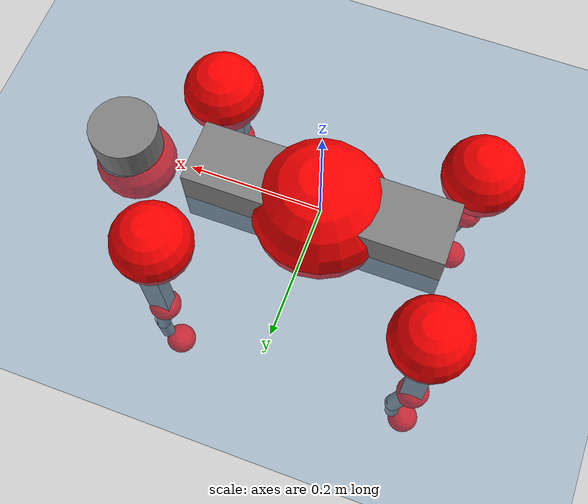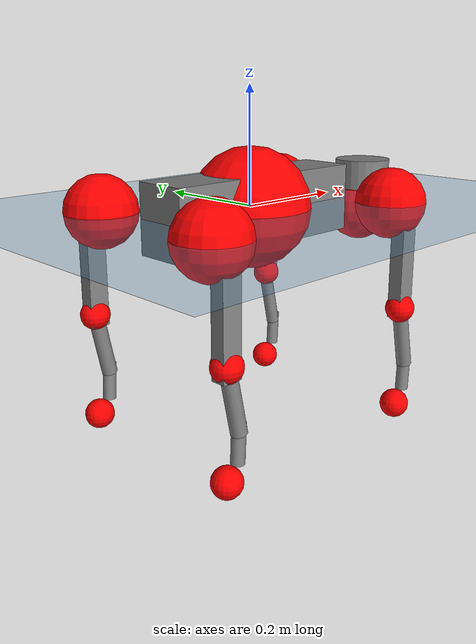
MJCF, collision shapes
<mujoco model="go2">
  <compiler angle="radian" assetdir="assets" balanceinertia="true" inertiafromgeom="false"/>

  <option timestep="0.005" density="1.2" viscosity="2e-05"/>

  <size nkey="1"/>

  <visual>
    <quality shadowsize="8192"/>
    <map shadowclip="0.5"/>
  </visual>

  <default>
    <default class="/">
      <geom contype="0" conaffinity="0" group="1" solref="-1000 -80"/>
      <site size="0.01 0.005 0.005" group="5"/>
      <general forcelimited="true" biastype="affine" gainprm="20" biasprm="0 -20 -0.5"/>
      <default class="go2">
        <joint armature="0.01" damping="0.01" frictionloss="0.2"/>
        <geom condim="1" margin="0.001"/>
        <default class="visual">
          <geom type="mesh" group="2"/>
        </default>
        <default class="collision">
          <geom group="3"/>
          <default class="foot">
            <geom size="0.022 0 0" condim="6" priority="1" friction="0.8 0.02 0.01" solimp="0.015 1 0.022"/>
          </default>
        </default>
        <default class="reward_collision_sphere">
          <geom group="5" rgba="1 0 0 1"/>
        </default>
      </default>
    </default>
  </default>

  <asset>
    <texture type="skybox" colorspace="auto" name="//unnamed_texture_0" builtin="gradient" rgb1="0.95 0.95 0.95" rgb2="0.95 0.95 0.95" width="100" height="600"/>
    <texture type="2d" colorspace="auto" name="texplane" builtin="checker" rgb1="0.345 0.575 0.748" rgb2="0.345 0.575 0.748" markrgb="1 1 1" width="512" height="512"/>
    <material name="MatPlane" class="/" texture="texplane" texuniform="true" texrepeat="2 2" specular="0.9"/>
    <material name="metal" class="/" rgba="0.9 0.95 0.95 1"/>
    <material name="black" class="/" rgba="0 0 0 1"/>
    <material name="white" class="/"/>
    <material name="gray" class="/" rgba="0.671705 0.692426 0.77427 1"/>
    <mesh name="base_0" class="/" file="base_0.obj"/>
    <mesh name="base_1" class="/" file="base_1.obj"/>
    <mesh name="base_2" class="/" file="base_2.obj"/>
    <mesh name="base_3" class="/" file="base_3.obj"/>
    <mesh name="base_4" class="/" file="base_4.obj"/>
    <mesh name="hip_0" class="/" file="hip_0.obj"/>
    <mesh name="hip_1" class="/" file="hip_1.obj"/>
    <mesh name="thigh_0" class="/" file="thigh_0.obj"/>
    <mesh name="thigh_1" class="/" file="thigh_1.obj"/>
    <mesh name="thigh_mirror_0" class="/" file="thigh_mirror_0.obj"/>
    <mesh name="thigh_mirror_1" class="/" file="thigh_mirror_1.obj"/>
    <mesh name="calf_0" class="/" file="calf_0.obj"/>
    <mesh name="calf_1" class="/" file="calf_1.obj"/>
    <mesh name="calf_mirror_0" class="/" file="calf_mirror_0.obj"/>
    <mesh name="calf_mirror_1" class="/" file="calf_mirror_1.obj"/>
    <mesh name="foot" class="/" file="foot.obj"/>
  </asset>

  <worldbody>
    <geom name="floor" class="/" size="100 100 0.125" type="plane" group="0" material="MatPlane"/>
    <light name="toplight_shadow" class="/" pos="0 0 5" dir="0.0990148 0.0990148 -0.990148" type="directional" ambient="0.04 0.04 0.04" diffuse="0.55 0.55 0.55" specular="0.12 0.12 0.12"/>
    <light name="toplight_fill" class="/" pos="0 0 5" dir="0.0990148 0.0990148 -0.990148" type="directional" castshadow="false" ambient="0.04 0.04 0.04" diffuse="0.3 0.3 0.3" specular="0.08 0.08 0.08"/>
    <body name="trunk" childclass="go2" pos="-0.000477884 -0.00211387 -0.000828619" quat="1 -2.26395e-05 6.08876e-06 -1.26977e-05">
      <inertial pos="0.0243318 -0.00194592 -0.00497869" quat="2.15695e-06 0.713005 0.00175028 0.701157" mass="7.36817" diaginertia="0.141972 0.189969 0.0114421"/>
      <joint name="//unnamed_joint_0" type="free" armature="0" damping="0" frictionloss="0"/>
      <geom name="//unnamed_geom_1" class="visual" material="black" mesh="base_0"/>
      <geom name="//unnamed_geom_2" class="visual" material="black" mesh="base_1"/>
      <geom name="//unnamed_geom_3" class="visual" material="black" mesh="base_2"/>
      <geom name="//unnamed_geom_4" class="visual" material="white" mesh="base_3"/>
      <geom name="//unnamed_geom_5" class="visual" material="gray" mesh="base_4"/>
      <geom name="trunk_1" class="collision" size="0.192556 0.0478576 0.0583504" type="box"/>
      <geom name="trunk_2" class="collision" size="0.0511845 0.0460661" pos="0.303494 0 0.00859441" type="cylinder"/>
      <geom name="trunk_3" class="collision" size="0.0481135" pos="0.312013 0 -0.0515664"/>
      <geom name="//unnamed_geom_9" class="reward_collision_sphere" size="0.102369"/>
      <geom name="//unnamed_geom_10" class="reward_collision_sphere" size="0.0614215" pos="0.29817 0 -0.0386748"/>
      <site name="imu" pos="-0.015976 0.0140326 0.0257679" size="0.0102369"/>
      <camera name="track" pos="0 -2.29348 0" quat="0.707107 0.707107 0 0" mode="trackcom"/>
      <camera name="ego_camera" pos="0.332246 0 0.0386748" quat="-0.5 -0.5 0.5 0.5"/>
      <body name="FL_hip" pos="0.208198 0.0527659 0.000588554" quat="1 0.000723103 -0.000171426 0.000260236">
        <inertial pos="-0.00569738 0.00244833 0.00246031" quat="0.496195 0.498954 0.503858 0.500962" mass="0.713539" diaginertia="0.00121062 0.00115557 0.000223113"/>
        <joint name="FL_hip_joint" pos="0 0 0" axis="0.99996 0.00465368 0.00766996" stiffness="0.00343882" range="-1.06211 1.10463" armature="0.0106265" damping="0.00146687" frictionloss="0.231463"/>
        <geom name="//unnamed_geom_11" class="visual" material="metal" mesh="hip_0"/>
        <geom name="//unnamed_geom_12" class="visual" material="gray" mesh="hip_1"/>
        <geom name="//unnamed_geom_13" class="collision" size="0.0470898 0.0204738" pos="0 0.0917392 0" quat="0.707107 0.707107 0 0" type="cylinder"/>
        <geom name="//unnamed_geom_14" class="reward_collision_sphere" size="0.0614215" pos="0 0.0802718 0"/>
        <body name="FL_thigh" pos="-0.00161429 0.109056 -0.000457536" quat="0.999999 0.000170854 -0.000828269 0.00109373">
          <inertial pos="-0.0014918 -0.0227617 -0.027835" quat="0.827034 0.0902434 -0.0177694 0.554577" mass="1.23527" diaginertia="0.0079717 0.0114294 0.000397424"/>
          <joint name="FL_thigh_joint" pos="0 0 0" axis="-0.00224841 0.999919 -0.0125053" stiffness="0.00329749" range="-1.51349 3.50318" armature="0.0111712" damping="0.00751382" frictionloss="0.228874"/>
          <geom name="//unnamed_geom_15" class="visual" material="metal" mesh="thigh_0"/>
          <geom name="//unnamed_geom_16" class="visual" material="gray" mesh="thigh_1"/>
          <geom name="//unnamed_geom_17" class="collision" size="0.109023 0.0125402 0.0174027" pos="0 0 -0.0915304" quat="0.707107 0 0.707107 0" type="box"/>
          <body name="FL_calf" pos="-0.00244864 -0.000811936 -0.185431" quat="0.999999 0.000207282 0.00129773 -0.000605885">
            <inertial pos="0.00936203 -0.000417794 -0.121079" quat="0.71165 0.00334081 -0.0054499 0.702505" mass="0.261633" diaginertia="0.00199512 0.00293427 2.49799e-05"/>
            <joint name="FL_calf_joint" pos="0 0 0" axis="-0.00387016 0.999973 0.00629822" stiffness="0.00164942" range="-2.72274 -0.835021" armature="0.00885032" damping="0.00668142" frictionloss="0.204051"/>
            <geom name="//unnamed_geom_18" class="visual" material="gray" mesh="calf_0"/>
            <geom name="//unnamed_geom_19" class="visual" material="black" mesh="calf_1"/>
            <geom name="FL_calf0" class="collision" size="0.0122843 0.0614215" pos="0.00851914 0 -0.0515664" quat="0.994493 0 -0.104807 0" type="cylinder"/>
            <geom name="//unnamed_geom_21" class="collision" size="0.0112606 0.03327" pos="0.0212978 0 -0.127197" quat="0.999688 0 0.0249974 0" type="cylinder"/>
            <geom name="//unnamed_geom_22" class="visual" pos="0 0 -0.183061" quat="1 0 0 0" material="black" mesh="foot"/>
            <geom name="FL_foot" class="foot" size="0.0165009" pos="-0.00212978 0 -0.183061"/>
            <geom name="//unnamed_geom_24" class="reward_collision_sphere" size="0.0255923"/>
            <geom name="//unnamed_geom_25" class="reward_collision_sphere" size="0.0255923" pos="-0.00212978 0 -0.183061"/>
            <site name="FL_foot" class="foot" pos="-0.00212978 0 -0.183061" size="0.0102369"/>
          </body>
        </body>
      </body>
      <body name="FR_hip" pos="0.20733 -0.0562396 -0.00220076" quat="1 -2.04967e-05 -0.000641406 -0.00014722">
        <inertial pos="-0.00751322 -0.00187611 0.00131689" quat="0.494287 0.508424 0.500297 0.496879" mass="0.70724" diaginertia="0.00116877 0.00117887 0.000228026"/>
        <joint name="FR_hip_joint" pos="0 0 0" axis="0.999911 -0.00683335 -0.0114575" range="-1.04649 1.07185" armature="0.0111258" damping="0.01315" frictionloss="0.227927"/>
        <geom name="//unnamed_geom_26" class="visual" pos="0 2.50283e-09 1.07352e-07" quat="4.63268e-05 1 0 0" material="metal" mesh="hip_0"/>
        <geom name="//unnamed_geom_27" class="visual" pos="0 4.05739e-09 -2.65522e-07" quat="4.63268e-05 1 0 0" material="gray" mesh="hip_1"/>
        <geom name="//unnamed_geom_28" class="collision" size="0.0470898 0.0204738" pos="0 -0.0917392 0" quat="0.707107 0.707107 0 0" type="cylinder"/>
        <geom name="//unnamed_geom_29" class="reward_collision_sphere" size="0.0614215" pos="0 -0.0802718 0"/>
        <body name="FR_thigh" pos="0.000431558 -0.110088 -0.000120083" quat="0.999999 -0.000677752 0.000990557 0.000836845">
          <inertial pos="-0.00604964 0.0257955 -0.0271178" quat="0.562402 -0.01536 0.0825235 0.822592" mass="1.30125" diaginertia="0.00822808 0.0118054 0.000408108"/>
          <joint name="FR_thigh_joint" pos="0 0 0" axis="0.00252082 -0.999995 -0.00205034" range="-3.4989 1.57219" armature="0.00990849" damping="0.0211886" frictionloss="0.204957"/>
          <geom name="//unnamed_geom_30" class="visual" material="metal" mesh="thigh_mirror_0"/>
          <geom name="//unnamed_geom_31" class="visual" material="gray" mesh="thigh_mirror_1"/>
          <geom name="//unnamed_geom_32" class="collision" size="0.109023 0.0125402 0.0174027" pos="0 0 -0.0915304" quat="0.707107 0 0.707107 0" type="box"/>
          <body name="FR_calf" pos="-0.000975242 -0.00165356 -0.185095" quat="1 0.000189381 0.000178283 -0.000657866">
            <inertial pos="0.00932863 0.000635429 -0.119247" quat="0.700666 -0.00013055 0.0139547 0.713353" mass="0.256657" diaginertia="0.00207031 0.00292343 2.55885e-05"/>
            <joint name="FR_calf_joint" pos="0 0 0" axis="-1.58153e-05 -1 -0.000132113" range="0.83853 2.70046" armature="0.0105467" damping="0.0118936" frictionloss="0.189156"/>
            <geom name="//unnamed_geom_33" class="visual" material="gray" mesh="calf_mirror_0"/>
            <geom name="//unnamed_geom_34" class="visual" material="black" mesh="calf_mirror_1"/>
            <geom name="FR_calf0" class="collision" size="0.013308 0.0614215" pos="0.0106489 0 -0.0515664" quat="0.995004 0 -0.0998334 0" type="cylinder"/>
            <geom name="//unnamed_geom_36" class="collision" size="0.0112606 0.03327" pos="0.0212978 0 -0.127197" quat="0.999688 0 0.0249974 0" type="cylinder"/>
            <geom name="//unnamed_geom_37" class="visual" pos="0 0 -0.183061" quat="1 0 0 0" material="black" mesh="foot"/>
            <geom name="FR_foot" class="foot" size="0.0201171" pos="-0.00212978 0 -0.183061"/>
            <geom name="//unnamed_geom_39" class="reward_collision_sphere" size="0.0255923"/>
            <geom name="//unnamed_geom_40" class="reward_collision_sphere" size="0.0255923" pos="-0.00212978 0 -0.183061"/>
            <site name="FR_foot" class="foot" pos="-0.00212978 0 -0.183061" size="0.0102369"/>
          </body>
        </body>
      </body>
      <body name="RL_hip" pos="-0.206557 0.0535301 0.00192181" quat="0.999999 -0.000426274 0.000584488 0.000819923">
        <inertial pos="0.00634975 0.000555001 0.00272035" quat="0.509283 0.50138 0.497182 0.491995" mass="0.767686" diaginertia="0.00125681 0.00122258 0.000231332"/>
        <joint name="RL_hip_joint" pos="0 0 0" axis="-0.99961 0.0211442 -0.018252" range="-1.02584 0.991346" armature="0.0104855" damping="0.00586297" frictionloss="0.211299"/>
        <geom name="//unnamed_geom_41" class="visual" pos="-1.78981e-09 0 -3.50843e-07" quat="4.63268e-05 0 1 0" material="metal" mesh="hip_0"/>
        <geom name="//unnamed_geom_42" class="visual" pos="-2.90149e-09 0 -3.11148e-07" quat="4.63268e-05 0 1 0" material="gray" mesh="hip_1"/>
        <geom name="//unnamed_geom_43" class="collision" size="0.0470898 0.0204738" pos="0 0.0917392 0" quat="0.707107 0.707107 0 0" type="cylinder"/>
        <geom name="//unnamed_geom_44" class="reward_collision_sphere" size="0.0614215" pos="0 0.0802718 0"/>
        <body name="RL_thigh" pos="-0.00233418 0.109274 0.000122838" quat="1 -0.000411097 7.86017e-05 -0.000102214">
          <inertial pos="-0.00325173 -0.0244881 -0.0287533" quat="0.835081 0.0747689 -0.0238024 0.544502" mass="1.26409" diaginertia="0.00823398 0.0123133 0.00042862"/>
          <joint name="RL_thigh_joint" pos="0 0 0" axis="0.0118504 0.999921 0.004103" stiffness="0.00385941" range="-0.565785 4.59327" armature="0.00910779" damping="0" frictionloss="0.21318"/>
          <geom name="//unnamed_geom_45" class="visual" material="metal" mesh="thigh_0"/>
          <geom name="//unnamed_geom_46" class="visual" material="gray" mesh="thigh_1"/>
          <geom name="//unnamed_geom_47" class="collision" size="0.109023 0.0125402 0.0174027" pos="0 0 -0.0915304" quat="0.707107 0 0.707107 0" type="box"/>
          <body name="RL_calf" pos="-0.00160519 0.000182501 -0.181835" quat="1 0.000283976 -2.06563e-05 0.000423075">
            <inertial pos="0.00749879 -0.000197072 -0.121267" quat="0.710445 0.00181216 0.00051002 0.70375" mass="0.277078" diaginertia="0.00214745 0.00304049 2.57854e-05"/>
            <joint name="RL_calf_joint" pos="0 0 0" axis="0.000198821 0.999934 0.0114993" stiffness="0.0020987" range="-2.72405 -0.8808" armature="0.0098145" damping="0" frictionloss="0.207406"/>
            <geom name="//unnamed_geom_48" class="visual" material="gray" mesh="calf_0"/>
            <geom name="//unnamed_geom_49" class="visual" material="black" mesh="calf_1"/>
            <geom name="RL_calf0" class="collision" size="0.013308 0.0614215" pos="0.0106489 0 -0.0515664" quat="0.995004 0 -0.0998334 0" type="cylinder"/>
            <geom name="//unnamed_geom_51" class="collision" size="0.0112606 0.03327" pos="0.0212978 0 -0.127197" quat="0.999688 0 0.0249974 0" type="cylinder"/>
            <geom name="//unnamed_geom_52" class="visual" pos="0 0 -0.183061" quat="1 0 0 0" material="black" mesh="foot"/>
            <geom name="RL_foot" class="foot" size="0.0220779" pos="-0.00212978 0 -0.183061"/>
            <geom name="//unnamed_geom_54" class="reward_collision_sphere" size="0.0255923"/>
            <geom name="//unnamed_geom_55" class="reward_collision_sphere" size="0.0255923" pos="-0.00212978 0 -0.183061"/>
            <site name="RL_foot" class="foot" pos="-0.00212978 0 -0.183061" size="0.0102369"/>
          </body>
        </body>
      </body>
      <body name="RR_hip" pos="-0.205123 -0.0524834 -0.0023632" quat="1 -0.000433917 0.00046789 -0.000162881">
        <inertial pos="0.00687434 -0.000512173 -0.0029303" quat="0.496411 0.495261 0.503631 0.504626" mass="0.743692" diaginertia="0.00128796 0.00125966 0.000235204"/>
        <joint name="RR_hip_joint" pos="0 0 0" axis="-0.999995 0.00302991 -0.000587239" stiffness="0.012366" range="-1.03737 1.02951" armature="0.0103945" damping="0.00418274" frictionloss="0.197903"/>
        <geom name="//unnamed_geom_56" class="visual" pos="1.79264e-09 2.50283e-09 -4.58195e-07" quat="2.14617e-09 4.63268e-05 4.63268e-05 -1" material="metal" mesh="hip_0"/>
        <geom name="//unnamed_geom_57" class="visual" pos="2.89448e-09 4.05739e-09 -4.56259e-08" quat="2.14617e-09 4.63268e-05 4.63268e-05 -1" material="gray" mesh="hip_1"/>
        <geom name="//unnamed_geom_58" class="collision" size="0.0470898 0.0204738" pos="0 -0.0917392 0" quat="0.707107 0.707107 0 0" type="cylinder"/>
        <geom name="//unnamed_geom_59" class="reward_collision_sphere" size="0.0614215" pos="0 -0.0802718 0"/>
        <body name="RR_thigh" pos="-9.97196e-05 -0.107398 0.00147106" quat="1 -0.000136922 0.000691221 -0.000272289">
          <inertial pos="-0.00375075 0.0246318 -0.0254215" quat="0.547762 -0.0203574 0.0854747 0.832007" mass="1.17822" diaginertia="0.007779 0.0110681 0.000397069"/>
          <joint name="RR_thigh_joint" pos="0 0 0" axis="0.000266286 -0.99999 -0.00452642" range="-4.5376 0.581523" armature="0.0107687" damping="0.0058353" frictionloss="0.208813"/>
          <geom name="//unnamed_geom_60" class="visual" material="metal" mesh="thigh_mirror_0"/>
          <geom name="//unnamed_geom_61" class="visual" material="gray" mesh="thigh_mirror_1"/>
          <geom name="//unnamed_geom_62" class="collision" size="0.109023 0.0125402 0.0174027" pos="0 0 -0.0915304" quat="0.707107 0 0.707107 0" type="box"/>
          <body name="RR_calf" pos="0.0016467 0.00122854 -0.181245" quat="0.999999 -0.00107101 -0.000618997 -0.000496375">
            <inertial pos="0.00580902 0.000886729 -0.122939" quat="0.705945 0.00713347 0.00148648 0.70823" mass="0.261737" diaginertia="0.00206026 0.00283284 2.51084e-05"/>
            <joint name="RR_calf_joint" pos="0 0 0" axis="-0.00336219 -0.999994 0.000954236" range="0.798256 2.73894" armature="0.00969709" damping="0.011621" frictionloss="0.20543"/>
            <geom name="//unnamed_geom_63" class="visual" material="gray" mesh="calf_mirror_0"/>
            <geom name="//unnamed_geom_64" class="visual" material="black" mesh="calf_mirror_1"/>
            <geom name="RR_calf0" class="collision" size="0.013308 0.0614215" pos="0.0106489 0 -0.0515664" quat="0.995004 0 -0.0998334 0" type="cylinder"/>
            <geom name="//unnamed_geom_66" class="collision" size="0.0112606 0.03327" pos="0.0212978 0 -0.127197" quat="0.999688 0 0.0249974 0" type="cylinder"/>
            <geom name="//unnamed_geom_67" class="visual" pos="0 0 -0.183061" quat="1 0 0 0" material="black" mesh="foot"/>
            <geom name="RR_foot" class="foot" size="0.020443" pos="-0.00212978 0 -0.183061"/>
            <geom name="//unnamed_geom_69" class="reward_collision_sphere" size="0.0255923"/>
            <geom name="//unnamed_geom_70" class="reward_collision_sphere" size="0.0255923" pos="-0.00212978 0 -0.183061"/>
            <site name="RR_foot" class="foot" pos="-0.00212978 0 -0.183061" size="0.0102369"/>
          </body>
        </body>
      </body>
    </body>
  </worldbody>

  <contact>
    <pair class="/" geom1="floor" geom2="FL_foot" name="//unnamed_contact_0"/>
    <pair class="/" geom1="floor" geom2="FR_foot" name="//unnamed_contact_1"/>
    <pair class="/" geom1="floor" geom2="RL_foot" name="//unnamed_contact_2"/>
    <pair class="/" geom1="floor" geom2="RR_foot" name="//unnamed_contact_3"/>
  </contact>

  <actuator>
    <general name="FL_hip" class="/" joint="FL_hip_joint" forcerange="-23.7854 23.7854" gainprm="20.84" biasprm="0 -20.84 -0.541578"/>
    <general name="FL_thigh" class="/" joint="FL_thigh_joint" forcerange="-21.8634 21.8634" gainprm="20.84" biasprm="0 -20.84 -0.541578"/>
    <general name="FL_calf" class="/" joint="FL_calf_joint" forcerange="-43.0776 43.0776" gainprm="20.84" biasprm="0 -20.84 -0.541578"/>
    <general name="FR_hip" class="/" joint="FR_hip_joint" forcerange="-24.7518 24.7518" gainprm="20.84" biasprm="0 -20.84 -0.541578"/>
    <general name="FR_thigh" class="/" joint="FR_thigh_joint" forcerange="-24.7247 24.7247" gainprm="20.84" biasprm="0 -20.84 -0.541578"/>
    <general name="FR_calf" class="/" joint="FR_calf_joint" forcerange="-50.6888 50.6888" gainprm="20.84" biasprm="0 -20.84 -0.541578"/>
    <general name="RL_hip" class="/" joint="RL_hip_joint" forcerange="-23.1723 23.1723" gainprm="20.84" biasprm="0 -20.84 -0.541578"/>
    <general name="RL_thigh" class="/" joint="RL_thigh_joint" forcerange="-24.1974 24.1974" gainprm="20.84" biasprm="0 -20.84 -0.541578"/>
    <general name="RL_calf" class="/" joint="RL_calf_joint" forcerange="-41.516 41.516" gainprm="20.84" biasprm="0 -20.84 -0.541578"/>
    <general name="RR_hip" class="/" joint="RR_hip_joint" forcerange="-24.2413 24.2413" gainprm="20.84" biasprm="0 -20.84 -0.541578"/>
    <general name="RR_thigh" class="/" joint="RR_thigh_joint" forcerange="-24.5144 24.5144" gainprm="20.84" biasprm="0 -20.84 -0.541578"/>
    <general name="RR_calf" class="/" joint="RR_calf_joint" forcerange="-47.5392 47.5392" gainprm="20.84" biasprm="0 -20.84 -0.541578"/>
  </actuator>

  <sensor>
    <gyro site="imu" name="imu_angular_velocity"/>
    <velocimeter site="imu" name="imu_linear_velocity"/>
    <framelinvel objtype="site" objname="FL_foot" name="FL_foot_global_linear_velocity"/>
    <framelinvel objtype="site" objname="FR_foot" name="FR_foot_global_linear_velocity"/>
    <framelinvel objtype="site" objname="RL_foot" name="RL_foot_global_linear_velocity"/>
    <framelinvel objtype="site" objname="RR_foot" name="RR_foot_global_linear_velocity"/>
  </sensor>

  <keyframe>
    <key name="home" qpos="0 0 0.325 1 0 0 0 0.1 0.8 -1.5 -0.1 -0.8 1.5 -0.1 0.8 -1.5 0.1 -0.8 1.5"/>
  </keyframe>
</mujoco>
